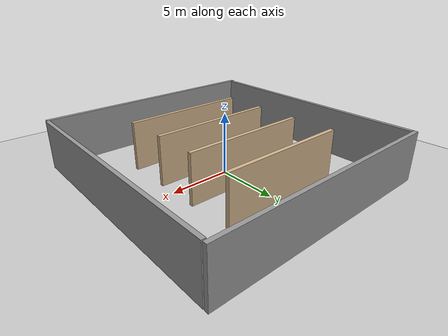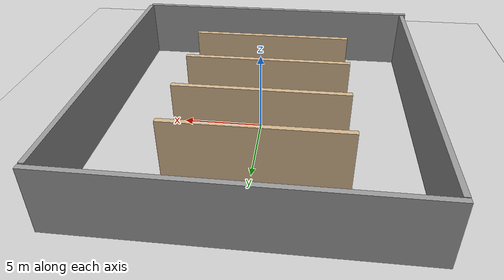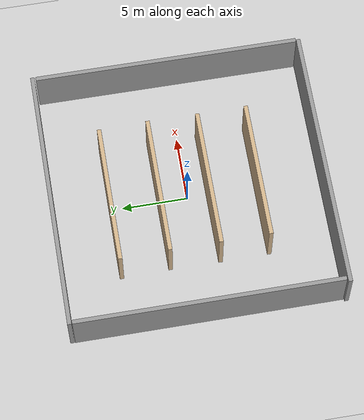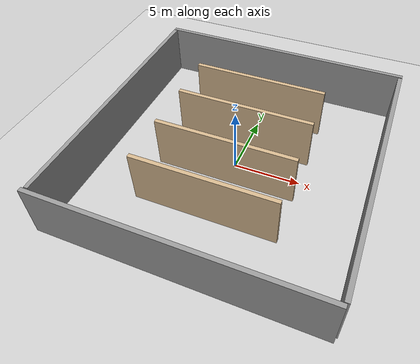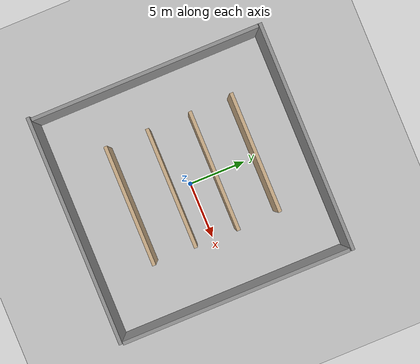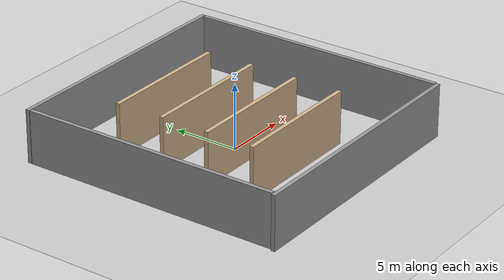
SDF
<sdf version="1.6">
 <world name="default">
  <model name="ground_plane">
   <static>1</static>
   <link name="link">
    <collision name="collision">
     <geometry><plane><normal>0 0 1</normal><size>100 100</size></plane></geometry>
     <surface>
      <contact><collide_bitmask>65535</collide_bitmask></contact>
      <friction><ode><mu>100</mu><mu2>50</mu2></ode></friction>
     </surface>
    </collision>
    <visual name="visual">
     <cast_shadows>0</cast_shadows>
     <geometry><plane><normal>0 0 1</normal><size>100 100</size></plane></geometry>
     <material>
      <script><uri>file://media/materials/scripts/gazebo.material</uri><name>Gazebo/Grey</name></script>
     </material>
    </visual>
   </link>
  </model>
  <gravity>0 0 -9.8</gravity>
  <magnetic_field>6e-06 2.3e-05 -4.2e-05</magnetic_field>
  <atmosphere type="adiabatic"/>
  <physics name="default_physics" default="0" type="ode">
   <max_step_size>0.001</max_step_size>
   <real_time_factor>1</real_time_factor>
   <real_time_update_rate>1000</real_time_update_rate>
  </physics>
  <scene><ambient>0.4 0.4 0.4 1</ambient><background>0.7 0.7 0.7 1</background><shadows>1</shadows></scene>
  <audio><device>default</device></audio>
  <spherical_coordinates>
   <surface_model>EARTH_WGS84</surface_model>
   <latitude_deg>0</latitude_deg>
   <longitude_deg>0</longitude_deg>
   <elevation>0</elevation>
   <heading_deg>0</heading_deg>
  </spherical_coordinates>
  <model name="outsideWall">
   <link name="link">
    <inertial>
     <mass>25.09</mass>
     <inertia><ixx>34.7153</ixx><ixy>0</ixy><ixz>0</ixz><iyy>870.653</iyy><iyz>0</iyz><izz>836.336</izz></inertia>
    </inertial>
    <pose>-0.518777 -12.2151 1.53797 0 -0 0</pose>
    <visual name="visual">
     <geometry><box><size>19.9977 0.308605 4.06304</size></box></geometry>
     <material>
      <script><name>Gazebo/Grey</name><uri>file://media/materials/scripts/gazebo.material</uri></script>
      <shader type="pixel"><normal_map>__default__</normal_map></shader>
      <ambient>1 1 1 0</ambient>
      <diffuse>0.7 0.7 0.7 1</diffuse>
      <specular>0.01 0.01 0.01 1</specular>
      <emissive>0 0 0 1</emissive>
     </material>
    </visual>
    <collision name="collision">
     <geometry><box><size>19.9977 0.308605 4.06304</size></box></geometry>
     <surface>
      <friction>
       <ode><mu>1</mu><mu2>1</mu2><fdir1>0 0 0</fdir1><slip1>0</slip1><slip2>0</slip2></ode>
       <torsional>
        <coefficient>1</coefficient>
        <patch_radius>0</patch_radius>
        <surface_radius>0</surface_radius>
        <use_patch_radius>1</use_patch_radius>
        <ode><slip>0</slip></ode>
       </torsional>
      </friction>
      <bounce><restitution_coefficient>0</restitution_coefficient><threshold>1e+06</threshold></bounce>
      <contact>
       <collide_without_contact>0</collide_without_contact>
       <collide_without_contact_bitmask>1</collide_without_contact_bitmask>
       <collide_bitmask>1</collide_bitmask>
       <ode>
        <soft_cfm>0</soft_cfm>
        <soft_erp>0.2</soft_erp>
        <kp>1e+13</kp>
        <kd>1</kd>
        <max_vel>0.01</max_vel>
        <min_depth>0</min_depth>
       </ode>
       <bullet>
        <split_impulse>1</split_impulse>
        <split_impulse_penetration_threshold>-0.01</split_impulse_penetration_threshold>
        <soft_cfm>0</soft_cfm>
        <soft_erp>0.2</soft_erp>
        <kp>1e+13</kp>
        <kd>1</kd>
       </bullet>
      </contact>
     </surface>
    </collision>
   </link>
   <static>0</static>
   <pose>0.487262 1.98883 0.493538 -1e-06 -0 -0.001277</pose>
  </model>
  <model name="outsideWall_0">
   <link name="link">
    <inertial>
     <mass>25.09</mass>
     <inertia><ixx>34.7153</ixx><ixy>0</ixy><ixz>0</ixz><iyy>870.653</iyy><iyz>0</iyz><izz>836.336</izz></inertia>
    </inertial>
    <pose>-0.518777 -12.2151 1.53797 0 -0 0</pose>
    <visual name="visual">
     <geometry><box><size>19.9977 0.308605 4.06304</size></box></geometry>
     <material>
      <script><name>Gazebo/Grey</name><uri>file://media/materials/scripts/gazebo.material</uri></script>
      <shader type="pixel"><normal_map>__default__</normal_map></shader>
      <ambient>1 1 1 0</ambient>
      <diffuse>0.7 0.7 0.7 1</diffuse>
      <specular>0.01 0.01 0.01 1</specular>
      <emissive>0 0 0 1</emissive>
     </material>
    </visual>
    <collision name="collision">
     <geometry><box><size>19.9977 0.308605 4.06304</size></box></geometry>
     <surface>
      <friction>
       <ode><mu>1</mu><mu2>1</mu2><fdir1>0 0 0</fdir1><slip1>0</slip1><slip2>0</slip2></ode>
       <torsional>
        <coefficient>1</coefficient>
        <patch_radius>0</patch_radius>
        <surface_radius>0</surface_radius>
        <use_patch_radius>1</use_patch_radius>
        <ode><slip>0</slip></ode>
       </torsional>
      </friction>
      <bounce><restitution_coefficient>0</restitution_coefficient><threshold>1e+06</threshold></bounce>
      <contact>
       <collide_without_contact>0</collide_without_contact>
       <collide_without_contact_bitmask>1</collide_without_contact_bitmask>
       <collide_bitmask>1</collide_bitmask>
       <ode>
        <soft_cfm>0</soft_cfm>
        <soft_erp>0.2</soft_erp>
        <kp>1e+13</kp>
        <kd>1</kd>
        <max_vel>0.01</max_vel>
        <min_depth>0</min_depth>
       </ode>
       <bullet>
        <split_impulse>1</split_impulse>
        <split_impulse_penetration_threshold>-0.01</split_impulse_penetration_threshold>
        <soft_cfm>0</soft_cfm>
        <soft_erp>0.2</soft_erp>
        <kp>1e+13</kp>
        <kd>1</kd>
       </bullet>
      </contact>
     </surface>
    </collision>
   </link>
   <static>0</static>
   <pose>0.587027 22.4071 0.493539 0 -1e-06 -0.000278</pose>
  </model>
  <model name="outsideWall_1">
   <link name="link">
    <inertial>
     <mass>25.09</mass>
     <inertia><ixx>34.7153</ixx><ixy>0</ixy><ixz>0</ixz><iyy>870.653</iyy><iyz>0</iyz><izz>836.336</izz></inertia>
    </inertial>
    <pose>-0.518777 -12.2151 1.53797 0 -0 0</pose>
    <visual name="visual">
     <geometry><box><size>19.9977 0.308605 4.06304</size></box></geometry>
     <material>
      <script><name>Gazebo/Grey</name><uri>file://media/materials/scripts/gazebo.material</uri></script>
      <shader type="pixel"><normal_map>__default__</normal_map></shader>
      <ambient>1 1 1 0</ambient>
      <diffuse>0.7 0.7 0.7 1</diffuse>
      <specular>0.01 0.01 0.01 1</specular>
      <emissive>0 0 0 1</emissive>
     </material>
    </visual>
    <collision name="collision">
     <geometry><box><size>19.9977 0.308605 4.06304</size></box></geometry>
     <surface>
      <friction>
       <ode><mu>1</mu><mu2>1</mu2><fdir1>0 0 0</fdir1><slip1>0</slip1><slip2>0</slip2></ode>
       <torsional>
        <coefficient>1</coefficient>
        <patch_radius>0</patch_radius>
        <surface_radius>0</surface_radius>
        <use_patch_radius>1</use_patch_radius>
        <ode><slip>0</slip></ode>
       </torsional>
      </friction>
      <bounce><restitution_coefficient>0</restitution_coefficient><threshold>1e+06</threshold></bounce>
      <contact>
       <collide_without_contact>0</collide_without_contact>
       <collide_without_contact_bitmask>1</collide_without_contact_bitmask>
       <collide_bitmask>1</collide_bitmask>
       <ode>
        <soft_cfm>0</soft_cfm>
        <soft_erp>0.2</soft_erp>
        <kp>1e+13</kp>
        <kd>1</kd>
        <max_vel>0.01</max_vel>
        <min_depth>0</min_depth>
       </ode>
       <bullet>
        <split_impulse>1</split_impulse>
        <split_impulse_penetration_threshold>-0.01</split_impulse_penetration_threshold>
        <soft_cfm>0</soft_cfm>
        <soft_erp>0.2</soft_erp>
        <kp>1e+13</kp>
        <kd>1</kd>
       </bullet>
      </contact>
     </surface>
    </collision>
   </link>
   <static>0</static>
   <pose>-2.28863 0.462344 0.493543 -0 -1e-06 1.57133</pose>
  </model>
  <model name="outsideWall_1_clone">
   <link name="link">
    <inertial>
     <mass>25.09</mass>
     <inertia><ixx>34.7153</ixx><ixy>0</ixy><ixz>0</ixz><iyy>870.653</iyy><iyz>0</iyz><izz>836.336</izz></inertia>
    </inertial>
    <pose>-0.518777 -12.2151 1.53797 0 -0 0</pose>
    <visual name="visual">
     <geometry><box><size>19.9977 0.308605 4.06304</size></box></geometry>
     <material>
      <script><name>Gazebo/Grey</name><uri>file://media/materials/scripts/gazebo.material</uri></script>
      <shader type="pixel"><normal_map>__default__</normal_map></shader>
      <ambient>1 1 1 0</ambient>
      <diffuse>0.7 0.7 0.7 1</diffuse>
      <specular>0.01 0.01 0.01 1</specular>
      <emissive>0 0 0 1</emissive>
     </material>
    </visual>
    <collision name="collision">
     <geometry><box><size>19.9977 0.308605 4.06304</size></box></geometry>
     <surface>
      <friction>
       <ode><mu>1</mu><mu2>1</mu2><fdir1>0 0 0</fdir1><slip1>0</slip1><slip2>0</slip2></ode>
       <torsional>
        <coefficient>1</coefficient>
        <patch_radius>0</patch_radius>
        <surface_radius>0</surface_radius>
        <use_patch_radius>1</use_patch_radius>
        <ode><slip>0</slip></ode>
       </torsional>
      </friction>
      <bounce><restitution_coefficient>0</restitution_coefficient><threshold>1e+06</threshold></bounce>
      <contact>
       <collide_without_contact>0</collide_without_contact>
       <collide_without_contact_bitmask>1</collide_without_contact_bitmask>
       <collide_bitmask>1</collide_bitmask>
       <ode>
        <soft_cfm>0</soft_cfm>
        <soft_erp>0.2</soft_erp>
        <kp>1e+13</kp>
        <kd>1</kd>
        <max_vel>0.01</max_vel>
        <min_depth>0</min_depth>
       </ode>
       <bullet>
        <split_impulse>1</split_impulse>
        <split_impulse_penetration_threshold>-0.01</split_impulse_penetration_threshold>
        <soft_cfm>0</soft_cfm>
        <soft_erp>0.2</soft_erp>
        <kp>1e+13</kp>
        <kd>1</kd>
       </bullet>
      </contact>
     </surface>
    </collision>
   </link>
   <static>0</static>
   <pose>-21.9833 0.491982 0.493542 0 1e-06 1.573</pose>
  </model>
  <model name="aisleWall">
   <link name="link">
    <inertial>
     <mass>13.1585</mass>
     <inertia><ixx>18.2065</ixx><ixy>0</ixy><ixz>0</ixz><iyy>138.716</iyy><iyz>0</iyz><izz>120.718</izz></inertia>
    </inertial>
    <pose>0.753692 -7.29445 1.58791 0 -0 0</pose>
    <visual name="visual">
     <geometry><box><size>10.4878 0.308605 4.06304</size></box></geometry>
     <material>
      <script><name>Gazebo/Grey</name><uri>file://media/materials/scripts/gazebo.material</uri></script>
      <shader type="pixel"><normal_map>__default__</normal_map></shader>
      <ambient>0.824 0.706 0.549 0</ambient>
      <diffuse>0.7 0.7 0.7 1</diffuse>
      <specular>0.01 0.01 0.01 1</specular>
      <emissive>0 0 0 1</emissive>
     </material>
    </visual>
    <collision name="collision">
     <geometry><box><size>10.4878 0.308605 4.06304</size></box></geometry>
     <surface>
      <friction>
       <ode><mu>1</mu><mu2>1</mu2><fdir1>0 0 0</fdir1><slip1>0</slip1><slip2>0</slip2></ode>
       <torsional>
        <coefficient>1</coefficient>
        <patch_radius>0</patch_radius>
        <surface_radius>0</surface_radius>
        <use_patch_radius>1</use_patch_radius>
        <ode><slip>0</slip></ode>
       </torsional>
      </friction>
      <bounce><restitution_coefficient>0</restitution_coefficient><threshold>1e+06</threshold></bounce>
      <contact>
       <collide_without_contact>0</collide_without_contact>
       <collide_without_contact_bitmask>1</collide_without_contact_bitmask>
       <collide_bitmask>1</collide_bitmask>
       <ode>
        <soft_cfm>0</soft_cfm>
        <soft_erp>0.2</soft_erp>
        <kp>1e+13</kp>
        <kd>1</kd>
        <max_vel>0.01</max_vel>
        <min_depth>0</min_depth>
       </ode>
       <bullet>
        <split_impulse>1</split_impulse>
        <split_impulse_penetration_threshold>-0.01</split_impulse_penetration_threshold>
        <soft_cfm>0</soft_cfm>
        <soft_erp>0.2</soft_erp>
        <kp>1e+13</kp>
        <kd>1</kd>
       </bullet>
      </contact>
     </surface>
    </collision>
   </link>
   <static>0</static>
   <pose>-0.971816 9.48104 0.443605 0 -1e-06 -7.6e-05</pose>
  </model>
  <model name="aisleWall_0">
   <link name="link">
    <inertial>
     <mass>13.1585</mass>
     <inertia><ixx>18.2065</ixx><ixy>0</ixy><ixz>0</ixz><iyy>138.716</iyy><iyz>0</iyz><izz>120.718</izz></inertia>
    </inertial>
    <pose>0.753692 -7.29445 1.58791 0 -0 0</pose>
    <visual name="visual">
     <geometry><box><size>10.4878 0.308605 4.06304</size></box></geometry>
     <material>
      <script><name>Gazebo/Grey</name><uri>file://media/materials/scripts/gazebo.material</uri></script>
      <shader type="pixel"><normal_map>__default__</normal_map></shader>
      <ambient>0.824 0.706 0.549 0</ambient>
      <diffuse>0.7 0.7 0.7 1</diffuse>
      <specular>0.01 0.01 0.01 1</specular>
      <emissive>0 0 0 1</emissive>
     </material>
    </visual>
    <collision name="collision">
     <geometry><box><size>10.4878 0.308605 4.06304</size></box></geometry>
     <surface>
      <friction>
       <ode><mu>1</mu><mu2>1</mu2><fdir1>0 0 0</fdir1><slip1>0</slip1><slip2>0</slip2></ode>
       <torsional>
        <coefficient>1</coefficient>
        <patch_radius>0</patch_radius>
        <surface_radius>0</surface_radius>
        <use_patch_radius>1</use_patch_radius>
        <ode><slip>0</slip></ode>
       </torsional>
      </friction>
      <bounce><restitution_coefficient>0</restitution_coefficient><threshold>1e+06</threshold></bounce>
      <contact>
       <collide_without_contact>0</collide_without_contact>
       <collide_without_contact_bitmask>1</collide_without_contact_bitmask>
       <collide_bitmask>1</collide_bitmask>
       <ode>
        <soft_cfm>0</soft_cfm>
        <soft_erp>0.2</soft_erp>
        <kp>1e+13</kp>
        <kd>1</kd>
        <max_vel>0.01</max_vel>
        <min_depth>0</min_depth>
       </ode>
       <bullet>
        <split_impulse>1</split_impulse>
        <split_impulse_penetration_threshold>-0.01</split_impulse_penetration_threshold>
        <soft_cfm>0</soft_cfm>
        <soft_erp>0.2</soft_erp>
        <kp>1e+13</kp>
        <kd>1</kd>
       </bullet>
      </contact>
     </surface>
    </collision>
   </link>
   <static>0</static>
   <pose>-0.992447 5.71373 0.443607 0 1e-06 0.000188</pose>
  </model>
  <model name="aisleWall_1">
   <link name="link">
    <inertial>
     <mass>13.1585</mass>
     <inertia><ixx>18.2065</ixx><ixy>0</ixy><ixz>0</ixz><iyy>138.716</iyy><iyz>0</iyz><izz>120.718</izz></inertia>
    </inertial>
    <pose>0.753692 -7.29445 1.58791 0 -0 0</pose>
    <visual name="visual">
     <geometry><box><size>10.4878 0.308605 4.06304</size></box></geometry>
     <material>
      <script><name>Gazebo/Grey</name><uri>file://media/materials/scripts/gazebo.material</uri></script>
      <shader type="pixel"><normal_map>__default__</normal_map></shader>
      <ambient>0.824 0.706 0.549 0</ambient>
      <diffuse>0.7 0.7 0.7 1</diffuse>
      <specular>0.01 0.01 0.01 1</specular>
      <emissive>0 0 0 1</emissive>
     </material>
    </visual>
    <collision name="collision">
     <geometry><box><size>10.4878 0.308605 4.06304</size></box></geometry>
     <surface>
      <friction>
       <ode><mu>1</mu><mu2>1</mu2><fdir1>0 0 0</fdir1><slip1>0</slip1><slip2>0</slip2></ode>
       <torsional>
        <coefficient>1</coefficient>
        <patch_radius>0</patch_radius>
        <surface_radius>0</surface_radius>
        <use_patch_radius>1</use_patch_radius>
        <ode><slip>0</slip></ode>
       </torsional>
      </friction>
      <bounce><restitution_coefficient>0</restitution_coefficient><threshold>1e+06</threshold></bounce>
      <contact>
       <collide_without_contact>0</collide_without_contact>
       <collide_without_contact_bitmask>1</collide_without_contact_bitmask>
       <collide_bitmask>1</collide_bitmask>
       <ode>
        <soft_cfm>0</soft_cfm>
        <soft_erp>0.2</soft_erp>
        <kp>1e+13</kp>
        <kd>1</kd>
        <max_vel>0.01</max_vel>
        <min_depth>0</min_depth>
       </ode>
       <bullet>
        <split_impulse>1</split_impulse>
        <split_impulse_penetration_threshold>-0.01</split_impulse_penetration_threshold>
        <soft_cfm>0</soft_cfm>
        <soft_erp>0.2</soft_erp>
        <kp>1e+13</kp>
        <kd>1</kd>
       </bullet>
      </contact>
     </surface>
    </collision>
   </link>
   <static>0</static>
   <pose>-0.957917 2.02071 0.443607 0 -0 1e-06</pose>
  </model>
  <model name="aisleWall_2">
   <link name="link">
    <inertial>
     <mass>13.1585</mass>
     <inertia><ixx>18.2065</ixx><ixy>0</ixy><ixz>0</ixz><iyy>138.716</iyy><iyz>0</iyz><izz>120.718</izz></inertia>
    </inertial>
    <pose>0.753692 -7.29445 1.58791 0 -0 0</pose>
    <visual name="visual">
     <geometry><box><size>10.4878 0.308605 4.06304</size></box></geometry>
     <material>
      <script><name>Gazebo/Grey</name><uri>file://media/materials/scripts/gazebo.material</uri></script>
      <shader type="pixel"><normal_map>__default__</normal_map></shader>
      <ambient>0.824 0.706 0.549 0</ambient>
      <diffuse>0.7 0.7 0.7 1</diffuse>
      <specular>0.01 0.01 0.01 1</specular>
      <emissive>0 0 0 1</emissive>
     </material>
    </visual>
    <collision name="collision">
     <geometry><box><size>10.4878 0.308605 4.06304</size></box></geometry>
     <surface>
      <friction>
       <ode><mu>1</mu><mu2>1</mu2><fdir1>0 0 0</fdir1><slip1>0</slip1><slip2>0</slip2></ode>
       <torsional>
        <coefficient>1</coefficient>
        <patch_radius>0</patch_radius>
        <surface_radius>0</surface_radius>
        <use_patch_radius>1</use_patch_radius>
        <ode><slip>0</slip></ode>
       </torsional>
      </friction>
      <bounce><restitution_coefficient>0</restitution_coefficient><threshold>1e+06</threshold></bounce>
      <contact>
       <collide_without_contact>0</collide_without_contact>
       <collide_without_contact_bitmask>1</collide_without_contact_bitmask>
       <collide_bitmask>1</collide_bitmask>
       <ode>
        <soft_cfm>0</soft_cfm>
        <soft_erp>0.2</soft_erp>
        <kp>1e+13</kp>
        <kd>1</kd>
        <max_vel>0.01</max_vel>
        <min_depth>0</min_depth>
       </ode>
       <bullet>
        <split_impulse>1</split_impulse>
        <split_impulse_penetration_threshold>-0.01</split_impulse_penetration_threshold>
        <soft_cfm>0</soft_cfm>
        <soft_erp>0.2</soft_erp>
        <kp>1e+13</kp>
        <kd>1</kd>
       </bullet>
      </contact>
     </surface>
    </collision>
   </link>
   <static>0</static>
   <pose>-1.08107 13.1629 0.443617 1e-06 -0 0</pose>
  </model>
  <light name="sun" type="directional">
   <pose>0 0 10 0 -0 0</pose>
   <diffuse>0.8 0.8 0.8 1</diffuse>
   <specular>0.2 0.2 0.2 1</specular>
   <attenuation>
    <range>1000</range>
    <constant>0.9</constant>
    <linear>0.01</linear>
    <quadratic>0.001</quadratic>
   </attenuation>
   <direction>-0.5 0.1 -0.9</direction>
  </light>
  <gravity>0 0 -9.8</gravity>
  <magnetic_field>6e-06 2.3e-05 -4.2e-05</magnetic_field>
  <atmosphere type="adiabatic"/>
  <physics name="default_physics" default="0" type="ode">
   <max_step_size>0.001</max_step_size>
   <real_time_factor>1</real_time_factor>
   <real_time_update_rate>1000</real_time_update_rate>
  </physics>
  <scene><ambient>0.4 0.4 0.4 1</ambient><background>0.7 0.7 0.7 1</background><shadows>1</shadows></scene>
  <audio><device>default</device></audio>
  <spherical_coordinates>
   <surface_model>EARTH_WGS84</surface_model>
   <latitude_deg>47.840640</latitude_deg>
   <longitude_deg>10.619944</longitude_deg>
   <elevation>740.0</elevation>
   <heading_deg>180</heading_deg>
  </spherical_coordinates>
 </world>
</sdf>
